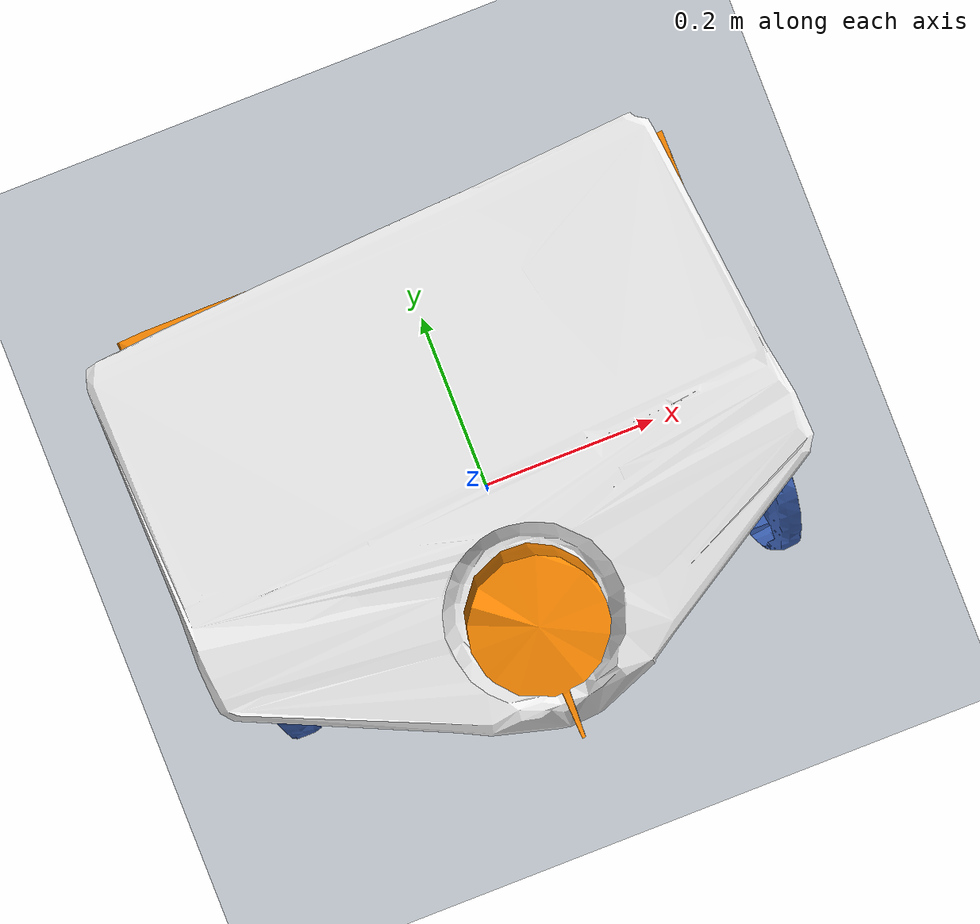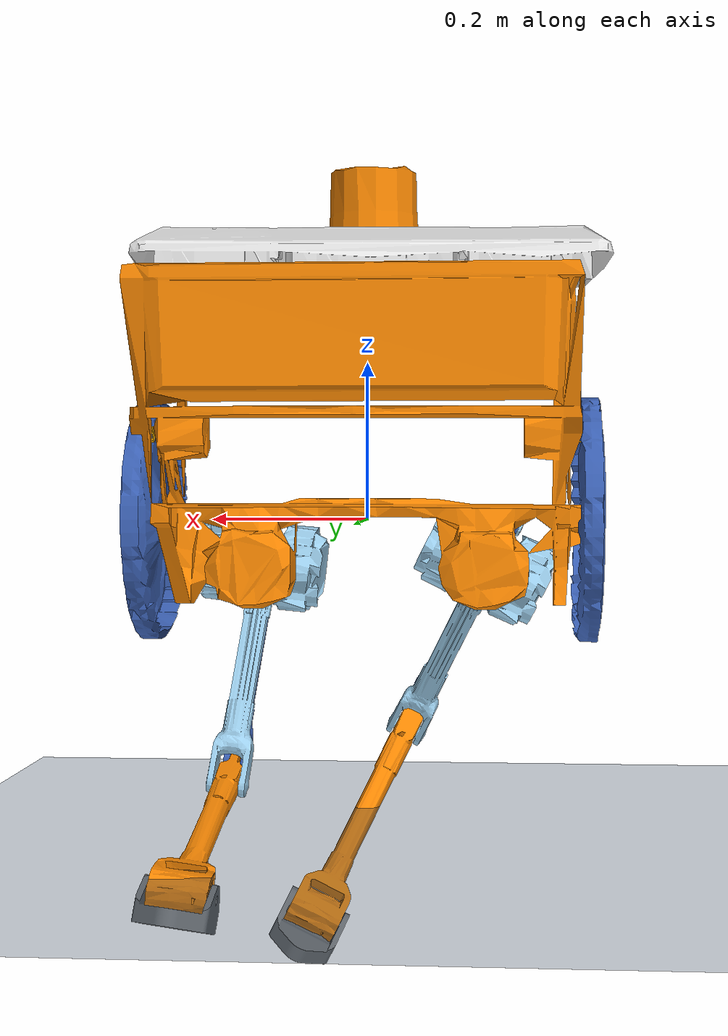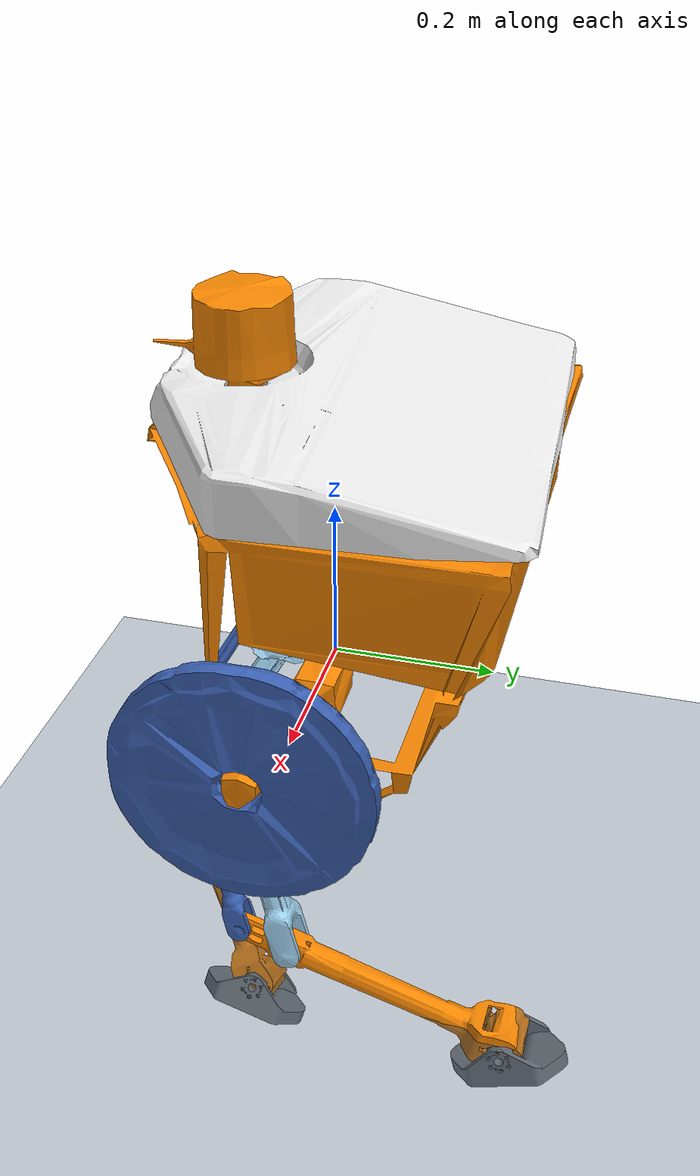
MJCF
<mujoco model="scene">
    <include file="robot.xml" />
    <option timestep="0.02" />

    <visual>
        <headlight diffuse="0.6 0.6 0.6" ambient="0.3 0.3 0.3" specular="0 0 0" />
        <rgba haze="0.15 0.25 0.35 1" />
        <global azimuth="160" elevation="-20" />
    </visual>

    <asset>
        <texture type="skybox" builtin="gradient" rgb1="0.3 0.5 0.7" rgb2="0 0 0" width="512"
            height="3072" />
        <texture type="2d" name="groundplane" builtin="checker" mark="edge" rgb1="0.2 0.3 0.4"
            rgb2="0.1 0.2 0.3"
            markrgb="0.8 0.8 0.8" width="300" height="300" />
        <material name="groundplane" texture="groundplane" texuniform="true" texrepeat="5 5"
            reflectance="0.2" />
    </asset>

    <worldbody>
        <light pos="0 0 3.5" dir="0 0 -1" directional="true" />
        <geom name="floor" size="0 0 0.05" pos="0 0 -0.4" type="plane" material="groundplane" />
    </worldbody>
</mujoco>

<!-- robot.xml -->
<!-- Generated using onshape-to-robot -->
<!-- Onshape https://cad.onshape.com/documents/d33ee4be47748debca1f193d/w/b71ca2b26fc569bc49f65e9e/e/9264a6d7363f17e1122831e3 -->
<mujoco model="robot">
  <compiler angle="radian" autolimits="true"/>
  <default>
    <default class="robot">
      <joint frictionloss="0.1" armature="0.005"/>
      <position kp="1" dampratio="0.9"/>
      <default class="visual">
        <geom type="mesh" contype="0" conaffinity="0" group="2"/>
      </default>
      <default class="collision">
        <geom group="3"/>
      </default>
    </default>
  </default>
  <worldbody>
    <!-- Link lid -->
    <body name="lid" pos="0 0 0" quat="1 0 0 0" childclass="robot">
      <freejoint name="lid_freejoint"/>
      <inertial pos="-0.003 -0.061439 0.358979" mass="2.8182" fullinertia="0.0336992 0.0334501 0.0544816 -7.3482e-05 -0.000189806 0.00185238"/>
      <!-- Part lid -->
      <geom type="mesh" class="visual" pos="8.32667e-17 0.09279 0.150192" quat="1 -0 -4.93038e-32 -3.46945e-18" mesh="lid" material="lid_material"/>
      <geom type="mesh" class="collision" pos="8.32667e-17 0.09279 0.150192" quat="1 -0 -4.93038e-32 -3.46945e-18" mesh="lid" material="lid_material"/>
      <!-- Link frame -->
      <body name="frame" pos="5.76937e-17 -0.10334 0.350282" quat="0 1 0 0">
        <!-- Joint from lid to frame -->
        <joint axis="0 0 1" name="lid" type="hinge" range="-2.0943951023931953 2.0943951023931953"/>
        <inertial pos="-0.000823 -0.132669 0.201313" mass="10.9798" fullinertia="0.340511 0.452579 0.318421 0.000963811 -0.00150348 0.0614132"/>
        <!-- Part frame -->
        <geom type="mesh" class="visual" pos="2.42861e-17 -0.19613 0.19909" quat="0 1 0 0" mesh="frame" material="frame_material"/>
        <geom type="mesh" class="collision" pos="2.42861e-17 -0.19613 0.19909" quat="0 1 0 0" mesh="frame" material="frame_material"/>
        <!-- Frame imu -->
        <site group="3" name="imu" pos="-8.6044e-17 -0.09064 0.322166" quat="0 1 0 0"/>
        <!-- Link wheel -->
        <body name="wheel" pos="-0.2968 -0.07294 0.350706" quat="0.5 0.5 -0.5 -0.5">
          <!-- Joint from frame to wheel -->
          <joint axis="0 0 1" name="wheel0" type="hinge"/>
          <inertial pos="-9.89636e-09 -3.55249e-08 -0.007652" mass="0.706823" fullinertia="0.00423992 0.00423992 0.00829168 1.12985e-09 -2.2045e-10 -1.81177e-11"/>
          <!-- Part wheel -->
          <geom type="mesh" class="visual" pos="0.0527022 -0.188111 -0.2968" quat="0.387994 0.591152 0.387994 -0.591152" mesh="wheel" material="wheel_material"/>
          <geom type="mesh" class="collision" pos="0.0527022 -0.188111 -0.2968" quat="0.387994 0.591152 0.387994 -0.591152" mesh="wheel_collision"/>
        </body>
        <!-- Link wheel_2 -->
        <body name="wheel_2" pos="0.271842 -0.07294 0.350706" quat="0.5 0.5 -0.5 -0.5">
          <!-- Joint from frame to wheel_2 -->
          <joint axis="0 0 1" name="wheel1" type="hinge"/>
          <inertial pos="5.0538e-09 3.65296e-08 -0.0173055" mass="0.706823" fullinertia="0.00423992 0.00423992 0.00829168 -1.22924e-09 1.95045e-10 -1.04326e-10"/>
          <!-- Part wheel_2 -->
          <geom type="mesh" class="visual" pos="0.12319 0.151616 0.271842" quat="0.5 -0.5 -0.5 -0.5" mesh="wheel" material="wheel_material"/>
          <geom type="mesh" class="collision" pos="0.12319 0.151616 0.271842" quat="0.5 -0.5 -0.5 -0.5" mesh="wheel_collision"/>
        </body>
        <!-- Link hip -->
        <body name="hip" pos="-0.15 -0.07744 0.412646" quat="0.688467 0.688467 0.161286 -0.161286">
          <!-- Joint from frame to hip -->
          <joint axis="0 0 1" name="hip0" type="hinge" range="-0.32516145386201334 0.9838354851337338"/>
          <inertial pos="-8.09567e-09 -3.63132e-09 -0.03801" mass="4.67744" fullinertia="0.0171206 0.025379 0.0167058 8.96117e-05 3.71946e-05 3.68544e-05"/>
          <!-- Part hip -->
          <geom type="mesh" class="visual" pos="0.15 -0.213556 0.11869" quat="0.707107 0.707107 -1.57009e-16 1.33462e-16" mesh="hip" material="hip_material"/>
          <geom type="mesh" class="collision" pos="0.15 -0.213556 0.11869" quat="0.707107 0.707107 -1.57009e-16 1.33462e-16" mesh="hip" material="hip_material"/>
          <!-- Link thigh -->
          <body name="thigh" pos="-0.03125 3.38098e-15 -0.07" quat="0.356098 0.610896 -0.356098 -0.610896">
            <!-- Joint from hip to thigh -->
            <joint axis="0 0 1" name="calf0" type="hinge" range="-1.230049841425402 5.053135465754185"/>
            <inertial pos="-0.0859122 -0.13192 -0.023536" mass="0.43939" fullinertia="0.00431889 0.00192734 0.00604161 -0.00270689 -0.000102277 -0.00015704"/>
            <!-- Part thigh -->
            <geom type="mesh" class="visual" pos="0.18869 -0.213556 -0.18125" quat="0.5 0.5 0.5 -0.5" mesh="thigh" material="thigh_material"/>
            <geom type="mesh" class="collision" pos="0.18869 -0.213556 -0.18125" quat="0.5 0.5 0.5 -0.5" mesh="thigh" material="thigh_material"/>
            <!-- Frame closing_knee0_2 -->
            <site group="3" name="closing_knee0_2" pos="-0.160754 -0.247736 -0.02625" quat="1.11022e-16 0 1 -3.33067e-16"/>
            <!-- Frame closing_knee0_2_z -->
            <site group="3" name="closing_knee0_2_z" pos="-0.160754 -0.247736 -0.12625" quat="1.11022e-16 0 1 -3.33067e-16"/>
          </body>
          <!-- Link knee_kicker -->
          <body name="knee_kicker" pos="0.03125 2.92301e-15 -0.07" quat="0.173745 -0.685429 0.173745 -0.685429">
            <!-- Joint from hip to knee_kicker -->
            <joint axis="0 0 1" name="driver0" type="hinge" range="-1.2819065707766797 1.5978866950139639"/>
            <inertial pos="9.25914e-05 0.0340895 -0.0160967" mass="0.178099" fullinertia="0.000233121 5.05159e-05 0.000230519 -4.91553e-07 1.2745e-07 4.73206e-05"/>
            <!-- Part knee_kicker -->
            <geom type="mesh" class="visual" pos="0.18869 0.213556 0.11875" quat="0.5 -0.5 -0.5 -0.5" mesh="knee_kicker" material="knee_kicker_material"/>
            <geom type="mesh" class="collision" pos="0.18869 0.213556 0.11875" quat="0.5 -0.5 -0.5 -0.5" mesh="knee_kicker" material="knee_kicker_material"/>
            <!-- Link align_bar -->
            <body name="align_bar" pos="0.000187756 0.0694547 -0.03625" quat="1 -1.05192e-16 2.22045e-16 1.47759e-17">
              <!-- Joint from knee_kicker to align_bar -->
              <joint axis="0 0 1" name="trochanter0" type="hinge" range="-3.160363656779658 3.122821650399928"/>
              <inertial pos="-0.154468 -0.10877 1.92321e-07" mass="0.185504" fullinertia="0.000772226 0.00165802 0.00240181 -0.00110092 3.44626e-10 -2.87425e-12"/>
              <!-- Part align_bar -->
              <geom type="mesh" class="visual" pos="-0.147614 0.185764 0.155" quat="0.707076 0.00663645 -0.707076 0.00663645" mesh="align_bar" material="align_bar_material"/>
              <geom type="mesh" class="collision" pos="-0.147614 0.185764 0.155" quat="0.707076 0.00663645 -0.707076 0.00663645" mesh="align_bar" material="align_bar_material"/>
              <!-- Link calf -->
              <body name="calf" pos="-0.244675 -0.165376 1.33227e-15" quat="1 -2.61545e-16 1.48734e-16 1.18778e-13">
                <!-- Joint from align_bar to calf -->
                <joint axis="0 0 1" name="patella0" type="hinge" range="-1.9010911740041423 1.2405014795856508"/>
                <inertial pos="0.00155668 -0.267205 0.0022" mass="0.803884" fullinertia="0.0155759 0.000660419 0.0157441 0.00195302 -2.76691e-05 0.000158799"/>
                <!-- Part calf -->
                <geom type="mesh" class="visual" pos="0.349257 -0.103635 0.155" quat="0.5 -0.5 -0.5 -0.5" mesh="calf" material="calf_material"/>
                <geom type="mesh" class="collision" pos="0.349257 -0.103635 0.155" quat="0.5 -0.5 -0.5 -0.5" mesh="calf" material="calf_material"/>
                <!-- Frame closing_knee0_1 -->
                <site group="3" name="closing_knee0_1" pos="-0.000187756 -0.0694547 1.55431e-15" quat="1 3.18768e-17 2.22045e-16 -8.71657e-18"/>
                <!-- Frame closing_knee0_1_z -->
                <site group="3" name="closing_knee0_1_z" pos="-0.000187756 -0.0694547 0.1" quat="1 3.18768e-17 2.22045e-16 -8.71657e-18"/>
                <!-- Link foot -->
                <body name="foot" pos="-0.000986093 -0.364776 0.0265" quat="3.31593e-15 -0.969343 0.245712 -6.57347e-15">
                  <!-- Joint from calf to foot -->
                  <joint axis="0 0 1" name="ankle0" type="hinge" range="-1.2819065707768817 0.28888975601801475"/>
                  <inertial pos="-0.00556919 0.0243546 0.0256122" mass="0.257475" fullinertia="0.000225116 0.000525902 0.000396738 -7.25759e-05 1.27307e-06 -5.56728e-06"/>
                  <!-- Part foot -->
                  <geom type="mesh" class="visual" pos="0.350243 -0.261141 -0.1285" quat="0.5 0.5 0.5 -0.5" mesh="foot" material="foot_material"/>
                  <geom type="mesh" class="collision" pos="0.350243 -0.261141 -0.1285" quat="0.5 0.5 0.5 -0.5" mesh="foot" material="foot_material"/>
                </body>
              </body>
            </body>
          </body>
        </body>
        <!-- Link lid_gear -->
        <body name="lid_gear" pos="-1.59545e-14 0.0528482 0.05365" quat="1 1.80479e-17 -0 -3.28079e-18">
          <!-- Joint from frame to lid_gear -->
          <joint axis="0 0 1" name="lid_gear" type="hinge"/>
          <inertial pos="2.83267e-11 -2.71742e-11 -0.0145304" mass="0.0269539" fullinertia="3.68187e-06 3.68187e-06 3.96395e-06 -7.82395e-14 2.8598e-16 -2.74358e-16"/>
          <!-- Part lid_gear -->
          <geom type="mesh" class="visual" pos="2.17893e-15 -0.248978 0.14544" quat="0 1 0 0" mesh="lid_gear" material="lid_gear_material"/>
          <geom type="mesh" class="collision" pos="2.17893e-15 -0.248978 0.14544" quat="0 1 0 0" mesh="lid_gear" material="lid_gear_material"/>
        </body>
        <!-- Link wheel_gear -->
        <body name="wheel_gear" pos="-0.277842 -0.150373 0.24012" quat="0.5 -0.5 0.5 -0.5">
          <!-- Joint from frame to wheel_gear -->
          <joint axis="0 0 1" name="motor0" type="hinge"/>
          <inertial pos="-2.14167e-05 -5.33217e-06 0" mass="0.0457202" fullinertia="3.55972e-06 3.55596e-06 2.94313e-06 9.99754e-10 -5.04485e-23 2.66349e-23"/>
          <!-- Part wheel_gear -->
          <geom type="mesh" class="visual" pos="0.0504398 -0.0351145 0.275542" quat="0.0817215 -0.702369 -0.0817215 -0.702369" mesh="wheel_gear" material="wheel_gear_material"/>
          <geom type="mesh" class="collision" pos="0.0504398 -0.0351145 0.275542" quat="0.0817215 -0.702369 -0.0817215 -0.702369" mesh="wheel_gear" material="wheel_gear_material"/>
        </body>
        <!-- Link wheel_gear_2 -->
        <body name="wheel_gear_2" pos="0.277842 -0.150373 0.24012" quat="0.5 0.5 -0.5 -0.5">
          <!-- Joint from frame to wheel_gear_2 -->
          <joint axis="0 0 1" name="motor1" type="hinge"/>
          <inertial pos="2.72562e-07 2.20689e-05 -5.55112e-17" mass="0.0457202" fullinertia="3.55571e-06 3.55997e-06 2.94313e-06 5.26601e-11 -4.19297e-27 -4.91151e-23"/>
          <!-- Part wheel_gear_2 -->
          <geom type="mesh" class="visual" pos="0.0457572 -0.0410302 -0.275543" quat="0.5 0.5 0.5 -0.5" mesh="wheel_gear" material="wheel_gear_material"/>
          <geom type="mesh" class="collision" pos="0.0457572 -0.0410302 -0.275543" quat="0.5 0.5 0.5 -0.5" mesh="wheel_gear" material="wheel_gear_material"/>
        </body>
        <!-- Link hip_2 -->
        <body name="hip_2" pos="0.15 -0.07744 0.412646" quat="0.707107 0.707107 0 -2.31987e-18">
          <!-- Joint from frame to hip_2 -->
          <joint axis="0 0 1" name="hip1" type="hinge" range="-0.3856574830359355 0.9233394559598116"/>
          <inertial pos="-8.51809e-09 -2.48363e-09 -0.03801" mass="4.67744" fullinertia="0.0173011 0.0251985 0.0167058 0.00121101 4.19089e-05 3.13899e-05"/>
          <!-- Part hip_2 -->
          <geom type="mesh" class="visual" pos="0.11921 -0.232153 0.11869" quat="0.705426 0.705426 -0.048731 -0.048731" mesh="hip" material="hip_material"/>
          <geom type="mesh" class="collision" pos="0.11921 -0.232153 0.11869" quat="0.705426 0.705426 -0.048731 -0.048731" mesh="hip" material="hip_material"/>
          <!-- Link thigh_2 -->
          <body name="thigh_2" pos="-0.0309532 0.00429701 -0.07" quat="0.0514282 0.691464 -0.147912 -0.705234">
            <!-- Joint from hip_2 to thigh_2 -->
            <joint axis="0 0 1" name="calf1" type="hinge" range="-0.45806367878664567 5.825121628392941"/>
            <inertial pos="-0.0859122 -0.13192 -0.023536" mass="0.43939" fullinertia="0.00431889 0.00192734 0.00604161 -0.00270689 -0.000102277 -0.00015704"/>
            <!-- Part thigh_2 -->
            <geom type="mesh" class="visual" pos="0.18869 -0.213556 -0.18125" quat="0.5 0.5 0.5 -0.5" mesh="thigh" material="thigh_material"/>
            <geom type="mesh" class="collision" pos="0.18869 -0.213556 -0.18125" quat="0.5 0.5 0.5 -0.5" mesh="thigh" material="thigh_material"/>
            <!-- Frame closing_knee1_2 -->
            <site group="3" name="closing_knee1_2" pos="-0.160754 -0.247736 -0.02625" quat="4.49148e-17 -0 1 -1.74162e-16"/>
            <!-- Frame closing_knee1_2_z -->
            <site group="3" name="closing_knee1_2_z" pos="-0.160754 -0.247736 -0.12625" quat="4.49148e-17 -0 1 -1.74162e-16"/>
          </body>
          <!-- Link knee_kicker_2 -->
          <body name="knee_kicker_2" pos="0.0309532 -0.00429701 -0.07" quat="0.386282 -0.533531 0.464053 -0.592272">
            <!-- Joint from hip_2 to knee_kicker_2 -->
            <joint axis="0 0 1" name="driver1" type="hinge" range="-2.0791847834811357 0.8006084823095081"/>
            <inertial pos="9.25914e-05 0.0340895 -0.0160967" mass="0.178099" fullinertia="0.000233121 5.05159e-05 0.000230519 -4.91553e-07 1.2745e-07 4.73206e-05"/>
            <!-- Part knee_kicker_2 -->
            <geom type="mesh" class="visual" pos="0.18869 0.213556 0.11875" quat="0.5 -0.5 -0.5 -0.5" mesh="knee_kicker" material="knee_kicker_material"/>
            <geom type="mesh" class="collision" pos="0.18869 0.213556 0.11875" quat="0.5 -0.5 -0.5 -0.5" mesh="knee_kicker" material="knee_kicker_material"/>
            <!-- Link align_bar_2 -->
            <body name="align_bar_2" pos="0.000187756 0.0694547 -0.03625" quat="1 -1.4961e-16 9.32734e-17 3.07358e-18">
              <!-- Joint from knee_kicker_2 to align_bar_2 -->
              <joint axis="0 0 1" name="trochanter1" type="hinge" range="-3.135071606713972 3.1481137004656143"/>
              <inertial pos="-0.157169 -0.104829 1.92321e-07" mass="0.185504" fullinertia="0.000717127 0.00171312 0.00240181 -0.00107712 3.44443e-10 -1.15887e-11"/>
              <!-- Part align_bar_2 -->
              <geom type="mesh" class="visual" pos="-0.142869 0.189438 0.155" quat="0.707103 -0.00230553 -0.707103 -0.00230553" mesh="align_bar" material="align_bar_material"/>
              <geom type="mesh" class="collision" pos="-0.142869 0.189438 0.155" quat="0.707103 -0.00230553 -0.707103 -0.00230553" mesh="align_bar" material="align_bar_material"/>
              <!-- Link calf_2 -->
              <body name="calf_2" pos="-0.248779 -0.159136 -2.77556e-16" quat="1 8.72091e-18 4.742e-16 -1.94584e-13">
                <!-- Joint from align_bar_2 to calf_2 -->
                <joint axis="0 0 1" name="patella1" type="hinge" range="-1.9263832240691419 1.2152094295206513"/>
                <inertial pos="0.00155668 -0.267205 0.0022" mass="0.803884" fullinertia="0.0155759 0.000660419 0.0157441 0.00195302 -2.76691e-05 0.000158799"/>
                <!-- Part calf_2 -->
                <geom type="mesh" class="visual" pos="0.349257 -0.103635 0.155" quat="0.5 -0.5 -0.5 -0.5" mesh="calf" material="calf_material"/>
                <geom type="mesh" class="collision" pos="0.349257 -0.103635 0.155" quat="0.5 -0.5 -0.5 -0.5" mesh="calf" material="calf_material"/>
                <!-- Frame closing_knee1_1 -->
                <site group="3" name="closing_knee1_1" pos="-0.000187756 -0.0694547 1.4988e-15" quat="1 -0 3.33067e-16 -1.06414e-16"/>
                <!-- Frame closing_knee1_1_z -->
                <site group="3" name="closing_knee1_1_z" pos="-0.000187756 -0.0694547 0.1" quat="1 -0 3.33067e-16 -1.06414e-16"/>
                <!-- Link foot_2 -->
                <body name="foot_2" pos="-0.000986093 -0.364776 0.0265" quat="1.93588e-15 -0.923881 0.382681 -5.77854e-15">
                  <!-- Joint from calf_2 to foot_2 -->
                  <joint axis="0 0 1" name="ankle1" type="hinge" range="-1.570790548350149 5.778444747472911e-06"/>
                  <inertial pos="-0.00556919 0.0243546 0.0256122" mass="0.257475" fullinertia="0.000225116 0.000525902 0.000396738 -7.25759e-05 1.27307e-06 -5.56728e-06"/>
                  <!-- Part foot_2 -->
                  <geom type="mesh" class="visual" pos="0.350243 -0.261141 -0.1285" quat="0.5 0.5 0.5 -0.5" mesh="foot" material="foot_material"/>
                  <geom type="mesh" class="collision" pos="0.350243 -0.261141 -0.1285" quat="0.5 0.5 0.5 -0.5" mesh="foot" material="foot_material"/>
                </body>
              </body>
            </body>
          </body>
        </body>
      </body>
    </body>
  </worldbody>
  <asset>
    <mesh file="assets_decimated/wheel.stl"/>
    <mesh file="assets_decimated/wheel_collision.stl"/>
    <mesh file="assets_decimated/thigh.stl"/>
    <mesh file="assets_decimated/wheel_gear.stl"/>
    <mesh file="assets_decimated/lid.stl"/>
    <mesh file="assets_decimated/hip.stl"/>
    <mesh file="assets_decimated/calf.stl"/>
    <mesh file="assets_decimated/foot.stl"/>
    <mesh file="assets_decimated/align_bar.stl"/>
    <mesh file="assets_decimated/knee_kicker.stl"/>
    <mesh file="assets_decimated/frame.stl"/>
    <mesh file="assets_decimated/lid_gear.stl"/>
    <material name="lid_material" rgba="0.917647 0.917647 0.917647 1"/>
    <material name="frame_material" rgba="0.972549 0.529412 0.00392157 1"/>
    <material name="wheel_material" rgba="0.231373 0.380392 0.705882 1"/>
    <material name="hip_material" rgba="0.615686 0.811765 0.929412 1"/>
    <material name="thigh_material" rgba="0.615686 0.811765 0.929412 1"/>
    <material name="knee_kicker_material" rgba="0.615686 0.811765 0.929412 1"/>
    <material name="align_bar_material" rgba="0.231373 0.380392 0.705882 1"/>
    <material name="calf_material" rgba="0.972549 0.529412 0.00392157 1"/>
    <material name="foot_material" rgba="0.498039 0.498039 0.498039 1"/>
    <material name="lid_gear_material" rgba="0.768627 0.886275 0.952941 1"/>
    <material name="wheel_gear_material" rgba="0.980392 0.713725 0.00392157 1"/>
  </asset>
  <actuator>
    <position class="robot" name="hip0" joint="hip0" forcerange="-120 120" inheritrange="1"/>
    <position class="robot" name="calf0" joint="calf0" forcerange="-120 120" inheritrange="1"/>
    <position class="robot" name="driver0" joint="driver0" forcerange="-120 120" inheritrange="1"/>
    <position class="robot" name="trochanter0" joint="trochanter0" inheritrange="1"/>
    <position class="robot" name="patella0" joint="patella0" inheritrange="1"/>
    <position class="robot" name="ankle0" joint="ankle0" forcerange="-15 15" inheritrange="1"/>
    <position class="robot" name="lid_gear" joint="lid_gear" forcerange="-5 5"/>
    <position class="robot" name="motor0" joint="motor0" forcerange="-2 2"/>
    <position class="robot" name="motor1" joint="motor1" forcerange="-2 2"/>
    <position class="robot" name="hip1" joint="hip1" forcerange="-120 120" inheritrange="1"/>
    <position class="robot" name="calf1" joint="calf1" forcerange="-120 120" inheritrange="1"/>
    <position class="robot" name="driver1" joint="driver1" forcerange="-120 120" inheritrange="1"/>
    <position class="robot" name="trochanter1" joint="trochanter1" inheritrange="1"/>
    <position class="robot" name="patella1" joint="patella1" inheritrange="1"/>
    <position class="robot" name="ankle1" joint="ankle1" forcerange="-15 15" inheritrange="1"/>
  </actuator>
  <sensor>
    <gyro name="imu_gyro" site="imu"/>
    <accelerometer name="imu_accel" site="imu"/>
    <jointvel name="jointvel_hip0" joint="hip0"/>
    <jointvel name="jointvel_calf0" joint="calf0"/>
    <jointvel name="jointvel_driver0" joint="driver0"/>
    <jointvel name="jointvel_trochanter0" joint="trochanter0"/>
    <jointvel name="jointvel_patella0" joint="patella0"/>
    <jointvel name="jointvel_ankle0" joint="ankle0"/>
    <jointvel name="jointvel_lid_gear" joint="lid_gear"/>
    <jointvel name="jointvel_motor0" joint="motor0"/>
    <jointvel name="jointvel_motor1" joint="motor1"/>
    <jointvel name="jointvel_hip1" joint="hip1"/>
    <jointvel name="jointvel_calf1" joint="calf1"/>
    <jointvel name="jointvel_driver1" joint="driver1"/>
    <jointvel name="jointvel_trochanter1" joint="trochanter1"/>
    <jointvel name="jointvel_patella1" joint="patella1"/>
    <jointvel name="jointvel_ankle1" joint="ankle1"/>
    <actuatorfrc name="actuatorfrc_hip0" actuator="hip0"/>
    <actuatorfrc name="actuatorfrc_calf0" actuator="calf0"/>
    <actuatorfrc name="actuatorfrc_driver0" actuator="driver0"/>
    <actuatorfrc name="actuatorfrc_trochanter0" actuator="trochanter0"/>
    <actuatorfrc name="actuatorfrc_patella0" actuator="patella0"/>
    <actuatorfrc name="actuatorfrc_ankle0" actuator="ankle0"/>
    <actuatorfrc name="actuatorfrc_lid_gear" actuator="lid_gear"/>
    <actuatorfrc name="actuatorfrc_motor0" actuator="motor0"/>
    <actuatorfrc name="actuatorfrc_motor1" actuator="motor1"/>
    <actuatorfrc name="actuatorfrc_hip1" actuator="hip1"/>
    <actuatorfrc name="actuatorfrc_calf1" actuator="calf1"/>
    <actuatorfrc name="actuatorfrc_driver1" actuator="driver1"/>
    <actuatorfrc name="actuatorfrc_trochanter1" actuator="trochanter1"/>
    <actuatorfrc name="actuatorfrc_patella1" actuator="patella1"/>
    <actuatorfrc name="actuatorfrc_ankle1" actuator="ankle1"/>
  </sensor>
  <equality>
    <connect site1="closing_knee0_1" site2="closing_knee0_2"/>
    <connect site1="closing_knee0_1_z" site2="closing_knee0_2_z"/>
    <connect site1="closing_knee1_1" site2="closing_knee1_2"/>
    <connect site1="closing_knee1_1_z" site2="closing_knee1_2_z"/>
    <joint joint1="lid" joint2="lid_gear" polycoef="0 0.5 0 0 0"/>
    <joint joint1="wheel0" joint2="motor0" polycoef="0 -0.08275862068965517 0 0 0"/>
    <joint joint1="wheel1" joint2="motor1" polycoef="0 -0.06896551724137931 0 0 0"/>
  </equality>
</mujoco>
